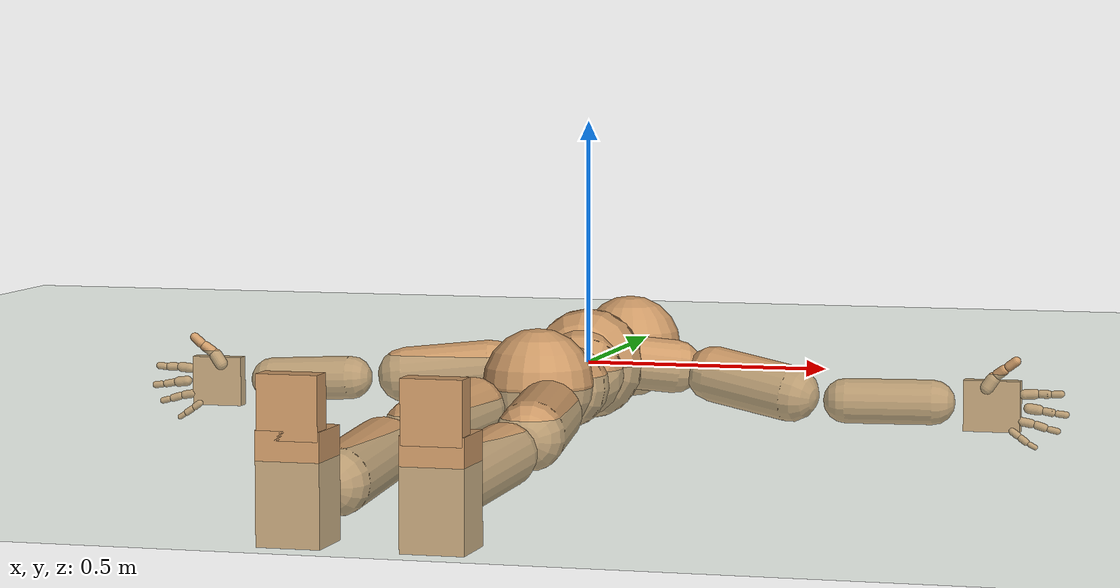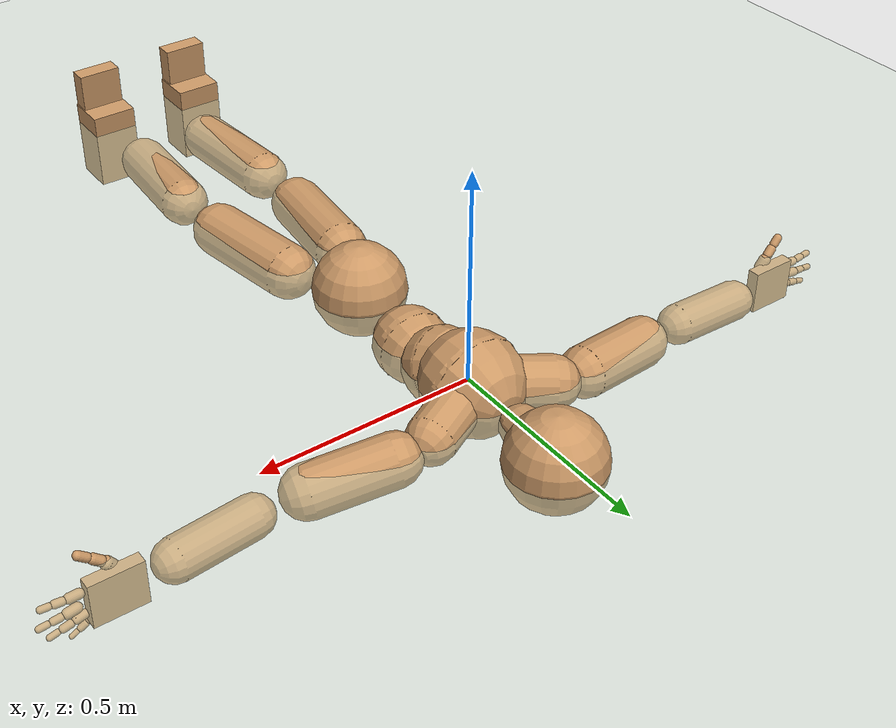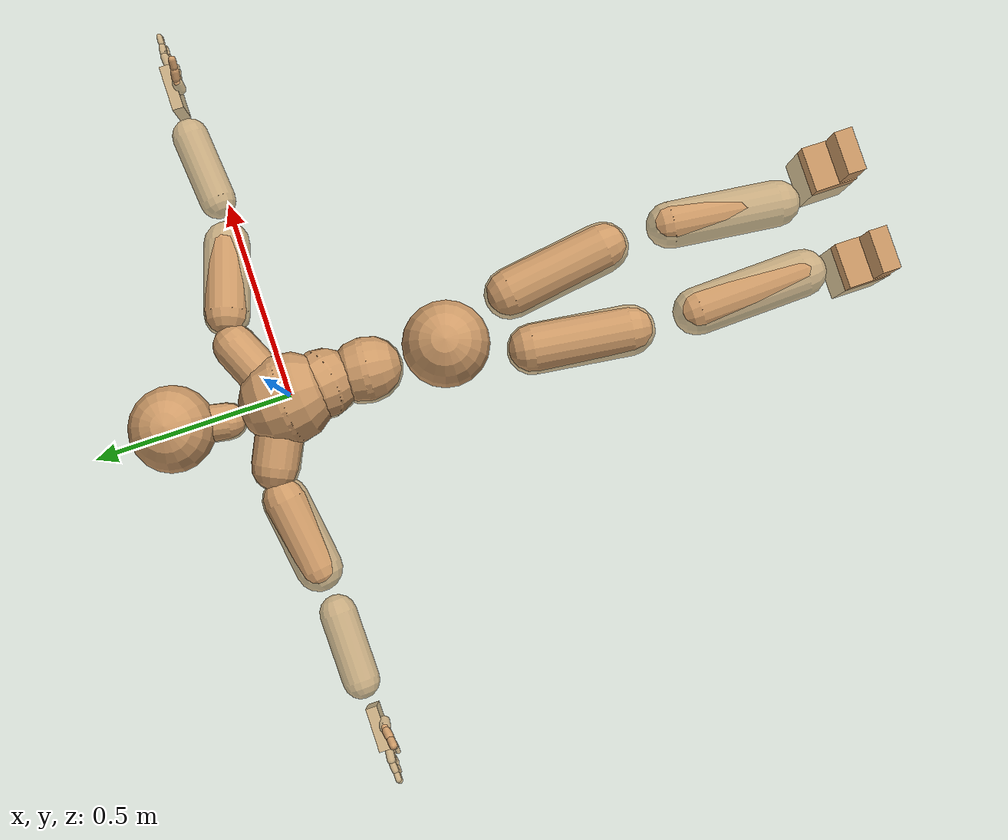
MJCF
<mujoco model="humanoid">
  <compiler coordinate="local"/>
  <default>
    <joint damping="0.0" armature="0.01" stiffness="0.0" limited="true"/>
    <geom conaffinity="1" condim="3" contype="7" margin="0.001" rgba="0.8 0.6 .4 1"/>
  </default>
  <asset>
    <texture type="skybox" builtin="gradient" rgb1=".4 .5 .6" rgb2="0 0 0" width="100" height="100"/>
    <texture builtin="flat" height="1278" mark="cross" markrgb="1 1 1" name="texgeom" random="0.01" rgb1="0.8 0.6 0.4" rgb2="0.8 0.6 0.4" type="cube" width="127"/>
    <texture builtin="checker" height="100" name="texplane" rgb1="0 0 0" rgb2="0.8 0.8 0.8" type="2d" width="100"/>
    <material name="MatPlane" reflectance="0.5" shininess="1" specular="1" texrepeat="60 60" texture="texplane"/>
    <material name="geom" texture="texgeom" texuniform="true"/>
  </asset>
  <worldbody>
    <light cutoff="100" diffuse="1 1 1" dir="-0 0 -1.3" directional="true" exponent="1" pos="0 0 1.3" specular=".1 .1 .1"/>
    <geom conaffinity="1" condim="3" name="floor" pos="0 0 0" rgba="0.8 0.9 0.8 1" size="100 100 .2" type="plane" material="MatPlane"/>
    <body name="Pelvis" pos="0.0029 -0.4027 0.0025">
      <freejoint name="Pelvis"/>
      <geom type="sphere" contype="1" conaffinity="1" density="4629.6296296296305" size="0.1094" pos="0.0000 0.0000 0.0000" name="Pelvis"/>
      <body name="L_Hip" pos="0.0609 -0.105 -0.0309">
        <joint name="L_Hip_x" type="hinge" pos="0 0 0" axis="1 0 0" user="250 2.5 1 500 10 2" armature="0.01" range="-90.0000 90.0000" damping="0" stiffness="0"/>
        <joint name="L_Hip_y" type="hinge" pos="0 0 0" axis="0 1 0" user="250 2.5 1 500 10 2" armature="0.01" range="-90.0000 90.0000" damping="0" stiffness="0"/>
        <joint name="L_Hip_z" type="hinge" pos="0 0 0" axis="0 0 1" user="250 2.5 1 500 10 2" armature="0.01" range="-90.0000 90.0000" damping="0" stiffness="0"/>
        <geom type="capsule" contype="1" conaffinity="1" density="2040.816327" fromto="0.0125 -0.0859 -0.0020 0.0499 -0.3435 -0.0080" size="0.065" name="L_Hip"/>
        <body name="L_Knee" pos="0.0624 -0.4294 -0.01">
          <joint name="L_Knee_x" type="hinge" pos="0 0 0" axis="1 0 0" user="250 2.5 1 500 10 2" armature="0.01" range="-180.0000 180.0000" damping="0" stiffness="0"/>
          <joint name="L_Knee_y" type="hinge" pos="0 0 0" axis="0 1 0" user="250 2.5 1 500 10 2" armature="0.01" range="-5.6250 5.6250" damping="0" stiffness="0"/>
          <joint name="L_Knee_z" type="hinge" pos="0 0 0" axis="0 0 1" user="250 2.5 1 500 10 2" armature="0.01" range="-5.6250 5.6250" damping="0" stiffness="0"/>
          <geom type="capsule" contype="1" conaffinity="1" density="1234.567901" fromto="-0.0096 -0.0926 -0.0076 -0.0383 -0.3705 -0.0304" size="0.0591" name="L_Knee"/>
          <body name="L_Ankle" pos="-0.0479 -0.4631 -0.038">
            <joint name="L_Ankle_x" type="hinge" pos="0 0 0" axis="1 0 0" user="150 2.5 1 500 10 2" armature="0.01" range="-90.0000 90.0000" damping="0" stiffness="0"/>
            <joint name="L_Ankle_y" type="hinge" pos="0 0 0" axis="0 1 0" user="150 2.5 1 500 10 2" armature="0.01" range="-90.0000 90.0000" damping="0" stiffness="0"/>
            <joint name="L_Ankle_z" type="hinge" pos="0 0 0" axis="0 0 1" user="150 2.5 1 500 10 2" armature="0.01" range="-90.0000 90.0000" damping="0" stiffness="0"/>
            <geom type="box" density="459.863562" pos="0.0471 -0.0349 0.0267" size="0.0563 0.0529 0.0984" quat="1.0000 0.0000 0.0000 0.0000" name="L_Ankle"/>
            <body name="L_Toe" pos="0.0544 -0.0688 0.1352">
              <joint name="L_Toe_x" type="hinge" pos="0 0 0" axis="1 0 0" user="150 1 1 500 1 1" armature="0.01" range="-90.0000 90.0000" damping="0" stiffness="0"/>
              <joint name="L_Toe_y" type="hinge" pos="0 0 0" axis="0 1 0" user="150 1 1 500 1 1" armature="0.01" range="-45.0000 45.0000" damping="0" stiffness="0"/>
              <joint name="L_Toe_z" type="hinge" pos="0 0 0" axis="0 0 1" user="150 1 1 500 1 1" armature="0.01" range="-45.0000 45.0000" damping="0" stiffness="0"/>
              <geom type="box" density="424.175928" pos="-0.0073 0.0035 0.0290" size="0.0537 0.0226 0.0557" quat="1.0000 0.0000 0.0000 0.0000" name="L_Toe"/>
            </body>
          </body>
        </body>
      </body>
      <body name="R_Hip" pos="-0.0661 -0.1182 -0.0245">
        <joint name="R_Hip_x" type="hinge" pos="0 0 0" axis="1 0 0" user="250 2.5 1 500 10 2" armature="0.01" range="-90.0000 90.0000" damping="0" stiffness="0"/>
        <joint name="R_Hip_y" type="hinge" pos="0 0 0" axis="0 1 0" user="250 2.5 1 500 10 2" armature="0.01" range="-90.0000 90.0000" damping="0" stiffness="0"/>
        <joint name="R_Hip_z" type="hinge" pos="0 0 0" axis="0 0 1" user="250 2.5 1 500 10 2" armature="0.01" range="-90.0000 90.0000" damping="0" stiffness="0"/>
        <geom type="capsule" contype="1" conaffinity="1" density="2040.816327" fromto="-0.0102 -0.0820 -0.0038 -0.0406 -0.3279 -0.0153" size="0.0642" name="R_Hip"/>
        <body name="R_Knee" pos="-0.0508 -0.4098 -0.0191">
          <joint name="R_Knee_x" type="hinge" pos="0 0 0" axis="1 0 0" user="250 2.5 1 500 10 2" armature="0.01" range="-180.0000 180.0000" damping="0" stiffness="0"/>
          <joint name="R_Knee_y" type="hinge" pos="0 0 0" axis="0 1 0" user="250 2.5 1 500 10 2" armature="0.01" range="-5.6250 5.6250" damping="0" stiffness="0"/>
          <joint name="R_Knee_z" type="hinge" pos="0 0 0" axis="0 0 1" user="250 2.5 1 500 10 2" armature="0.01" range="-5.6250 5.6250" damping="0" stiffness="0"/>
          <geom type="capsule" contype="1" conaffinity="1" density="1234.567901" fromto="0.0033 -0.0946 -0.0049 0.0131 -0.3782 -0.0197" size="0.0608" name="R_Knee"/>
          <body name="R_Ankle" pos="0.0164 -0.4728 -0.0247">
            <joint name="R_Ankle_x" type="hinge" pos="0 0 0" axis="1 0 0" user="150 1 1 500 10 2" armature="0.01" range="-90.0000 90.0000" damping="0" stiffness="0"/>
            <joint name="R_Ankle_y" type="hinge" pos="0 0 0" axis="0 1 0" user="150 1 1 500 10 2" armature="0.01" range="-90.0000 90.0000" damping="0" stiffness="0"/>
            <joint name="R_Ankle_z" type="hinge" pos="0 0 0" axis="0 0 1" user="150 1 1 500 10 2" armature="0.01" range="-90.0000 90.0000" damping="0" stiffness="0"/>
            <geom type="box" density="459.842336" pos="-0.0277 -0.0316 0.0161" size="0.0563 0.0529 0.0984" quat="1.0000 0.0000 0.0000 0.0000" name="R_Ankle"/>
            <body name="R_Toe" pos="-0.0438 -0.0681 0.1357">
              <joint name="R_Toe_x" type="hinge" pos="0 0 0" axis="1 0 0" user="150 1 1 500 1 1" armature="0.01" range="-90.0000 90.0000" damping="0" stiffness="0"/>
              <joint name="R_Toe_y" type="hinge" pos="0 0 0" axis="0 1 0" user="150 1 1 500 1 1" armature="0.01" range="-45.0000 45.0000" damping="0" stiffness="0"/>
              <joint name="R_Toe_z" type="hinge" pos="0 0 0" axis="0 0 1" user="150 1 1 500 1 1" armature="0.01" range="-45.0000 45.0000" damping="0" stiffness="0"/>
              <geom type="box" density="424.18878" pos="0.0160 0.0062 0.0179" size="0.0537 0.0226 0.0557" quat="1.0000 0.0000 0.0000 0.0000" name="R_Toe"/>
            </body>
          </body>
        </body>
      </body>
      <body name="Torso" pos="-0.0029 0.126 -0.0282">
        <joint name="Torso_x" type="hinge" pos="0 0 0" axis="1 0 0" user="500 5 1 500 10 2" armature="0.01" range="-60.0000 60.0000" damping="0" stiffness="0"/>
        <joint name="Torso_y" type="hinge" pos="0 0 0" axis="0 1 0" user="500 5 1 500 10 2" armature="0.01" range="-60.0000 60.0000" damping="0" stiffness="0"/>
        <joint name="Torso_z" type="hinge" pos="0 0 0" axis="0 0 1" user="500 5 1 500 10 2" armature="0.01" range="-60.0000 60.0000" damping="0" stiffness="0"/>
        <geom type="capsule" contype="1" conaffinity="1" density="2040.816327" fromto="0.0052 0.0725 -0.0015 0.0063 0.0886 -0.0018" size="0.0836" name="Torso"/>
        <body name="Spine" pos="0.0115 0.1612 -0.0033">
          <joint name="Spine_x" type="hinge" pos="0 0 0" axis="1 0 0" user="500 5 1 500 10 2" armature="0.01" range="-60.0000 60.0000" damping="0" stiffness="0"/>
          <joint name="Spine_y" type="hinge" pos="0 0 0" axis="0 1 0" user="500 5 1 500 10 2" armature="0.01" range="-60.0000 60.0000" damping="0" stiffness="0"/>
          <joint name="Spine_z" type="hinge" pos="0 0 0" axis="0 0 1" user="500 5 1 500 10 2" armature="0.01" range="-60.0000 60.0000" damping="0" stiffness="0"/>
          <geom type="capsule" contype="1" conaffinity="1" density="2040.816327" fromto="-0.0057 0.0290 0.0137 -0.0070 0.0355 0.0167" size="0.0881" name="Spine"/>
          <body name="Chest" pos="-0.0127 0.0645 0.0304">
            <joint name="Chest_x" type="hinge" pos="0 0 0" axis="1 0 0" user="500 5 1 500 10 2" armature="0.01" range="-60.0000 60.0000" damping="0" stiffness="0"/>
            <joint name="Chest_y" type="hinge" pos="0 0 0" axis="0 1 0" user="500 5 1 500 10 2" armature="0.01" range="-60.0000 60.0000" damping="0" stiffness="0"/>
            <joint name="Chest_z" type="hinge" pos="0 0 0" axis="0 0 1" user="500 5 1 500 10 2" armature="0.01" range="-60.0000 60.0000" damping="0" stiffness="0"/>
            <geom type="capsule" contype="1" conaffinity="1" density="2040.816327" fromto="-0.0024 0.0557 -0.0051 -0.0029 0.0680 -0.0063" size="0.1144" name="Chest"/>
            <body name="Neck" pos="-0.0139 0.1827 -0.0242">
              <joint name="Neck_x" type="hinge" pos="0 0 0" axis="1 0 0" user="150 1 1 250 50 4" armature="0.01" range="-180.0000 180.0000" damping="0" stiffness="0"/>
              <joint name="Neck_y" type="hinge" pos="0 0 0" axis="0 1 0" user="150 1 1 250 50 4" armature="0.01" range="-180.0000 180.0000" damping="0" stiffness="0"/>
              <joint name="Neck_z" type="hinge" pos="0 0 0" axis="0 0 1" user="150 1 1 250 50 4" armature="0.01" range="-180.0000 180.0000" damping="0" stiffness="0"/>
              <geom type="capsule" contype="1" conaffinity="1" density="1000" fromto="0.0057 0.0338 0.0049 0.0228 0.1353 0.0197" size="0.047" name="Neck"/>
              <body name="Head" pos="0.0285 0.1691 0.0246">
                <joint name="Head_x" type="hinge" pos="0 0 0" axis="1 0 0" user="150 1 1 250 50 4" armature="0.01" range="-90.0000 90.0000" damping="0" stiffness="0"/>
                <joint name="Head_y" type="hinge" pos="0 0 0" axis="0 1 0" user="150 1 1 250 50 4" armature="0.01" range="-90.0000 90.0000" damping="0" stiffness="0"/>
                <joint name="Head_z" type="hinge" pos="0 0 0" axis="0 0 1" user="150 1 1 250 50 4" armature="0.01" range="-90.0000 90.0000" damping="0" stiffness="0"/>
                <geom type="sphere" contype="1" conaffinity="1" density="1000" size="0.1089" pos="0.0000 0.0000 0.0000" name="Head"/>
              </body>
            </body>
            <body name="L_Thorax" pos="0.0514 0.0947 -0.0016">
              <joint name="L_Thorax_x" type="hinge" pos="0 0 0" axis="1 0 0" user="200 2 1 500 50 4" armature="0.01" range="-180.0000 180.0000" damping="0" stiffness="0"/>
              <joint name="L_Thorax_y" type="hinge" pos="0 0 0" axis="0 1 0" user="200 2 1 500 50 4" armature="0.01" range="-180.0000 180.0000" damping="0" stiffness="0"/>
              <joint name="L_Thorax_z" type="hinge" pos="0 0 0" axis="0 0 1" user="200 2 1 500 50 4" armature="0.01" range="-180.0000 180.0000" damping="0" stiffness="0"/>
              <geom type="capsule" contype="1" conaffinity="1" density="1000" fromto="0.0280 0.0127 -0.0037 0.1120 0.0508 -0.0147" size="0.0557" name="L_Thorax"/>
              <body name="L_Shoulder" pos="0.14 0.0635 -0.0183">
                <joint name="L_Shoulder_x" type="hinge" pos="0 0 0" axis="1 0 0" user="200 2 1 500 50 4" armature="0.01" range="-180.0000 180.0000" damping="0" stiffness="0"/>
                <joint name="L_Shoulder_y" type="hinge" pos="0 0 0" axis="0 1 0" user="200 2 1 500 50 4" armature="0.01" range="-180.0000 180.0000" damping="0" stiffness="0"/>
                <joint name="L_Shoulder_z" type="hinge" pos="0 0 0" axis="0 0 1" user="200 2 1 500 50 4" armature="0.01" range="-180.0000 180.0000" damping="0" stiffness="0"/>
                <geom type="capsule" contype="1" conaffinity="1" density="1000" fromto="0.0575 -0.0166 -0.0097 0.2302 -0.0664 -0.0389" size="0.0586" name="L_Shoulder"/>
                <body name="L_Elbow" pos="0.2877 -0.083 -0.0486">
                  <joint name="L_Elbow_x" type="hinge" pos="0 0 0" axis="1 0 0" user="150 1 1 150 10 2" armature="0.01" range="-720.0000 720.0000" damping="0" stiffness="0"/>
                  <joint name="L_Elbow_y" type="hinge" pos="0 0 0" axis="0 1 0" user="150 1 1 150 10 2" armature="0.01" range="-720.0000 720.0000" damping="0" stiffness="0"/>
                  <joint name="L_Elbow_z" type="hinge" pos="0 0 0" axis="0 0 1" user="150 1 1 150 10 2" armature="0.01" range="-720.0000 720.0000" damping="0" stiffness="0"/>
                  <geom type="capsule" contype="1" conaffinity="1" density="1000" fromto="0.0590 0.0054 0.0000 0.2362 0.0217 0.0001" size="0.0461" name="L_Elbow"/>
                  <body name="L_Wrist" pos="0.2952 0.0272 0.0001">
                    <joint name="L_Wrist_x" type="hinge" pos="0 0 0" axis="1 0 0" user="100 1 1 150 1 1" armature="0.01" range="-180.0000 180.0000" damping="0" stiffness="0"/>
                    <joint name="L_Wrist_y" type="hinge" pos="0 0 0" axis="0 1 0" user="100 1 1 150 1 1" armature="0.01" range="-180.0000 180.0000" damping="0" stiffness="0"/>
                    <joint name="L_Wrist_z" type="hinge" pos="0 0 0" axis="0 0 1" user="100 1 1 150 1 1" armature="0.01" range="-180.0000 180.0000" damping="0" stiffness="0"/>
                    <geom type="box" density="1209.075488" pos="0.0628 -0.0021 -0.0034" size="0.0578 0.0142 0.0523" quat="1.0000 0.0000 0.0000 0.0000" name="L_Wrist"/>
                    <body name="L_Index1" pos="0.1218 -0.0099 0.0217">
                      <joint name="L_Index1_x" type="hinge" pos="0 0 0" axis="1 0 0" user="100 10 1 150" armature="0.01" range="-180.0000 180.0000" damping="0" stiffness="0"/>
                      <joint name="L_Index1_y" type="hinge" pos="0 0 0" axis="0 1 0" user="100 10 1 150" armature="0.01" range="-180.0000 180.0000" damping="0" stiffness="0"/>
                      <joint name="L_Index1_z" type="hinge" pos="0 0 0" axis="0 0 1" user="100 10 1 150" armature="0.01" range="-180.0000 180.0000" damping="0" stiffness="0"/>
                      <geom type="capsule" contype="1" conaffinity="1" density="1000" fromto="0.0071 0.0006 0.0006 0.0283 0.0023 0.0023" size="0.0103" name="L_Index1"/>
                      <body name="L_Index2" pos="0.0353 0.0028 0.0029">
                        <joint name="L_Index2_x" type="hinge" pos="0 0 0" axis="1 0 0" user="100 10 1 150" armature="0.01" range="-180.0000 180.0000" damping="0" stiffness="0"/>
                        <joint name="L_Index2_y" type="hinge" pos="0 0 0" axis="0 1 0" user="100 10 1 150" armature="0.01" range="-180.0000 180.0000" damping="0" stiffness="0"/>
                        <joint name="L_Index2_z" type="hinge" pos="0 0 0" axis="0 0 1" user="100 10 1 150" armature="0.01" range="-180.0000 180.0000" damping="0" stiffness="0"/>
                        <geom type="capsule" contype="1" conaffinity="1" density="1000" fromto="0.0050 -0.0005 -0.0001 0.0198 -0.0021 -0.0003" size="0.0085" name="L_Index2"/>
                        <body name="L_Index3" pos="0.0248 -0.0026 -0.0003">
                          <joint name="L_Index3_x" type="hinge" pos="0 0 0" axis="1 0 0" user="100 10 1 150" armature="0.01" range="-180.0000 180.0000" damping="0" stiffness="0"/>
                          <joint name="L_Index3_y" type="hinge" pos="0 0 0" axis="0 1 0" user="100 10 1 150" armature="0.01" range="-180.0000 180.0000" damping="0" stiffness="0"/>
                          <joint name="L_Index3_z" type="hinge" pos="0 0 0" axis="0 0 1" user="100 10 1 150" armature="0.01" range="-180.0000 180.0000" damping="0" stiffness="0"/>
                          <geom type="capsule" contype="1" conaffinity="1" density="1000" fromto="0.0054 -0.0001 0.0003 0.0214 -0.0005 0.0013" size="0.0072" name="L_Index3"/>
                        </body>
                      </body>
                    </body>
                    <body name="L_Middle1" pos="0.1308 -0.0071 -0.005">
                      <joint name="L_Middle1_x" type="hinge" pos="0 0 0" axis="1 0 0" user="100 10 1 150" armature="0.01" range="-180.0000 180.0000" damping="0" stiffness="0"/>
                      <joint name="L_Middle1_y" type="hinge" pos="0 0 0" axis="0 1 0" user="100 10 1 150" armature="0.01" range="-180.0000 180.0000" damping="0" stiffness="0"/>
                      <joint name="L_Middle1_z" type="hinge" pos="0 0 0" axis="0 0 1" user="100 10 1 150" armature="0.01" range="-180.0000 180.0000" damping="0" stiffness="0"/>
                      <geom type="capsule" contype="1" conaffinity="1" density="1000" fromto="0.0068 0.0002 -0.0009 0.0271 0.0008 -0.0036" size="0.0106" name="L_Middle1"/>
                      <body name="L_Middle2" pos="0.0339 0.001 -0.0045">
                        <joint name="L_Middle2_x" type="hinge" pos="0 0 0" axis="1 0 0" user="100 10 1 150" armature="0.01" range="-180.0000 180.0000" damping="0" stiffness="0"/>
                        <joint name="L_Middle2_y" type="hinge" pos="0 0 0" axis="0 1 0" user="100 10 1 150" armature="0.01" range="-180.0000 180.0000" damping="0" stiffness="0"/>
                        <joint name="L_Middle2_z" type="hinge" pos="0 0 0" axis="0 0 1" user="100 10 1 150" armature="0.01" range="-180.0000 180.0000" damping="0" stiffness="0"/>
                        <geom type="capsule" contype="1" conaffinity="1" density="1000" fromto="0.0052 -0.0005 -0.0009 0.0208 -0.0019 -0.0037" size="0.0079" name="L_Middle2"/>
                        <body name="L_Middle3" pos="0.026 -0.0024 -0.0047">
                          <joint name="L_Middle3_x" type="hinge" pos="0 0 0" axis="1 0 0" user="100 10 1 150" armature="0.01" range="-180.0000 180.0000" damping="0" stiffness="0"/>
                          <joint name="L_Middle3_y" type="hinge" pos="0 0 0" axis="0 1 0" user="100 10 1 150" armature="0.01" range="-180.0000 180.0000" damping="0" stiffness="0"/>
                          <joint name="L_Middle3_z" type="hinge" pos="0 0 0" axis="0 0 1" user="100 10 1 150" armature="0.01" range="-180.0000 180.0000" damping="0" stiffness="0"/>
                          <geom type="capsule" contype="1" conaffinity="1" density="1000" fromto="0.0056 -0.0001 -0.0005 0.0224 -0.0003 -0.0021" size="0.0069" name="L_Middle3"/>
                        </body>
                      </body>
                    </body>
                    <body name="L_Pinky1" pos="0.1021 -0.0167 -0.05">
                      <joint name="L_Pinky1_x" type="hinge" pos="0 0 0" axis="1 0 0" user="100 10 1 150" armature="0.01" range="-180.0000 180.0000" damping="0" stiffness="0"/>
                      <joint name="L_Pinky1_y" type="hinge" pos="0 0 0" axis="0 1 0" user="100 10 1 150" armature="0.01" range="-180.0000 180.0000" damping="0" stiffness="0"/>
                      <joint name="L_Pinky1_z" type="hinge" pos="0 0 0" axis="0 0 1" user="100 10 1 150" armature="0.01" range="-180.0000 180.0000" damping="0" stiffness="0"/>
                      <geom type="capsule" contype="1" conaffinity="1" density="1000" fromto="0.0036 -0.0003 -0.0026 0.0143 -0.0011 -0.0104" size="0.0074" name="L_Pinky1"/>
                      <body name="L_Pinky2" pos="0.0179 -0.0014 -0.0131">
                        <joint name="L_Pinky2_x" type="hinge" pos="0 0 0" axis="1 0 0" user="100 10 1 150" armature="0.01" range="-180.0000 180.0000" damping="0" stiffness="0"/>
                        <joint name="L_Pinky2_y" type="hinge" pos="0 0 0" axis="0 1 0" user="100 10 1 150" armature="0.01" range="-180.0000 180.0000" damping="0" stiffness="0"/>
                        <joint name="L_Pinky2_z" type="hinge" pos="0 0 0" axis="0 0 1" user="100 10 1 150" armature="0.01" range="-180.0000 180.0000" damping="0" stiffness="0"/>
                        <geom type="capsule" contype="1" conaffinity="1" density="1000" fromto="0.0035 -0.0004 -0.0024 0.0140 -0.0017 -0.0097" size="0.0071" name="L_Pinky2"/>
                        <body name="L_Pinky3" pos="0.0174 -0.0021 -0.0121">
                          <joint name="L_Pinky3_x" type="hinge" pos="0 0 0" axis="1 0 0" user="100 10 1 150" armature="0.01" range="-180.0000 180.0000" damping="0" stiffness="0"/>
                          <joint name="L_Pinky3_y" type="hinge" pos="0 0 0" axis="0 1 0" user="100 10 1 150" armature="0.01" range="-180.0000 180.0000" damping="0" stiffness="0"/>
                          <joint name="L_Pinky3_z" type="hinge" pos="0 0 0" axis="0 0 1" user="100 10 1 150" armature="0.01" range="-180.0000 180.0000" damping="0" stiffness="0"/>
                          <geom type="capsule" contype="1" conaffinity="1" density="1000" fromto="0.0039 -0.0000 -0.0020 0.0156 -0.0001 -0.0081" size="0.0054" name="L_Pinky3"/>
                        </body>
                      </body>
                    </body>
                    <body name="L_Ring1" pos="0.1176 -0.0105 -0.0316">
                      <joint name="L_Ring1_x" type="hinge" pos="0 0 0" axis="1 0 0" user="100 10 1 150" armature="0.01" range="-180.0000 180.0000" damping="0" stiffness="0"/>
                      <joint name="L_Ring1_y" type="hinge" pos="0 0 0" axis="0 1 0" user="100 10 1 150" armature="0.01" range="-180.0000 180.0000" damping="0" stiffness="0"/>
                      <joint name="L_Ring1_z" type="hinge" pos="0 0 0" axis="0 0 1" user="100 10 1 150" armature="0.01" range="-180.0000 180.0000" damping="0" stiffness="0"/>
                      <geom type="capsule" contype="1" conaffinity="1" density="1000" fromto="0.0063 0.0004 -0.0012 0.0253 0.0015 -0.0047" size="0.0089" name="L_Ring1"/>
                      <body name="L_Ring2" pos="0.0317 0.0019 -0.0059">
                        <joint name="L_Ring2_x" type="hinge" pos="0 0 0" axis="1 0 0" user="100 10 1 150" armature="0.01" range="-180.0000 180.0000" damping="0" stiffness="0"/>
                        <joint name="L_Ring2_y" type="hinge" pos="0 0 0" axis="0 1 0" user="100 10 1 150" armature="0.01" range="-180.0000 180.0000" damping="0" stiffness="0"/>
                        <joint name="L_Ring2_z" type="hinge" pos="0 0 0" axis="0 0 1" user="100 10 1 150" armature="0.01" range="-180.0000 180.0000" damping="0" stiffness="0"/>
                        <geom type="capsule" contype="1" conaffinity="1" density="1000" fromto="0.0051 -0.0003 -0.0016 0.0203 -0.0013 -0.0063" size="0.0083" name="L_Ring2"/>
                        <body name="L_Ring3" pos="0.0253 -0.0017 -0.0079">
                          <joint name="L_Ring3_x" type="hinge" pos="0 0 0" axis="1 0 0" user="100 10 1 150" armature="0.01" range="-180.0000 180.0000" damping="0" stiffness="0"/>
                          <joint name="L_Ring3_y" type="hinge" pos="0 0 0" axis="0 1 0" user="100 10 1 150" armature="0.01" range="-180.0000 180.0000" damping="0" stiffness="0"/>
                          <joint name="L_Ring3_z" type="hinge" pos="0 0 0" axis="0 0 1" user="100 10 1 150" armature="0.01" range="-180.0000 180.0000" damping="0" stiffness="0"/>
                          <geom type="capsule" contype="1" conaffinity="1" density="1000" fromto="0.0055 0.0001 -0.0012 0.0219 0.0003 -0.0047" size="0.0065" name="L_Ring3"/>
                        </body>
                      </body>
                    </body>
                    <body name="L_Thumb1" pos="0.0503 -0.0216 0.0302">
                      <joint name="L_Thumb1_x" type="hinge" pos="0 0 0" axis="1 0 0" user="100 10 1 150" armature="0.01" range="-180.0000 180.0000" damping="0" stiffness="0"/>
                      <joint name="L_Thumb1_y" type="hinge" pos="0 0 0" axis="0 1 0" user="100 10 1 150" armature="0.01" range="-180.0000 180.0000" damping="0" stiffness="0"/>
                      <joint name="L_Thumb1_z" type="hinge" pos="0 0 0" axis="0 0 1" user="100 10 1 150" armature="0.01" range="-180.0000 180.0000" damping="0" stiffness="0"/>
                      <geom type="capsule" contype="1" conaffinity="1" density="1000" fromto="0.0039 0.0002 0.0057 0.0157 0.0009 0.0229" size="0.014" name="L_Thumb1"/>
                      <body name="L_Thumb2" pos="0.0197 0.0011 0.0286">
                        <joint name="L_Thumb2_x" type="hinge" pos="0 0 0" axis="1 0 0" user="100 10 1 150" armature="0.01" range="-180.0000 180.0000" damping="0" stiffness="0"/>
                        <joint name="L_Thumb2_y" type="hinge" pos="0 0 0" axis="0 1 0" user="100 10 1 150" armature="0.01" range="-180.0000 180.0000" damping="0" stiffness="0"/>
                        <joint name="L_Thumb2_z" type="hinge" pos="0 0 0" axis="0 0 1" user="100 10 1 150" armature="0.01" range="-180.0000 180.0000" damping="0" stiffness="0"/>
                        <geom type="capsule" contype="1" conaffinity="1" density="1000" fromto="0.0047 -0.0012 0.0035 0.0187 -0.0046 0.0139" size="0.011" name="L_Thumb2"/>
                        <body name="L_Thumb3" pos="0.0234 -0.0058 0.0174">
                          <joint name="L_Thumb3_x" type="hinge" pos="0 0 0" axis="1 0 0" user="100 10 1 150" armature="0.01" range="-180.0000 180.0000" damping="0" stiffness="0"/>
                          <joint name="L_Thumb3_y" type="hinge" pos="0 0 0" axis="0 1 0" user="100 10 1 150" armature="0.01" range="-180.0000 180.0000" damping="0" stiffness="0"/>
                          <joint name="L_Thumb3_z" type="hinge" pos="0 0 0" axis="0 0 1" user="100 10 1 150" armature="0.01" range="-180.0000 180.0000" damping="0" stiffness="0"/>
                          <geom type="capsule" contype="1" conaffinity="1" density="1000" fromto="0.0051 -0.0008 0.0039 0.0203 -0.0030 0.0155" size="0.0098" name="L_Thumb3"/>
                        </body>
                      </body>
                    </body>
                  </body>
                </body>
              </body>
            </body>
            <body name="R_Thorax" pos="-0.0536 0.0937 -0.0085">
              <joint name="R_Thorax_x" type="hinge" pos="0 0 0" axis="1 0 0" user="200 2 1 150 10 2" armature="0.01" range="-180.0000 180.0000" damping="0" stiffness="0"/>
              <joint name="R_Thorax_y" type="hinge" pos="0 0 0" axis="0 1 0" user="200 2 1 150 10 2" armature="0.01" range="-180.0000 180.0000" damping="0" stiffness="0"/>
              <joint name="R_Thorax_z" type="hinge" pos="0 0 0" axis="0 0 1" user="200 2 1 150 10 2" armature="0.01" range="-180.0000 180.0000" damping="0" stiffness="0"/>
              <geom type="capsule" contype="1" conaffinity="1" density="1000" fromto="-0.0243 0.0118 -0.0031 -0.0973 0.0473 -0.0123" size="0.061" name="R_Thorax"/>
              <body name="R_Shoulder" pos="-0.1216 0.0591 -0.0154">
                <joint name="R_Shoulder_x" type="hinge" pos="0 0 0" axis="1 0 0" user="200 2 1 250 10 2" armature="0.01" range="-180.0000 180.0000" damping="0" stiffness="0"/>
                <joint name="R_Shoulder_y" type="hinge" pos="0 0 0" axis="0 1 0" user="200 2 1 250 10 2" armature="0.01" range="-180.0000 180.0000" damping="0" stiffness="0"/>
                <joint name="R_Shoulder_z" type="hinge" pos="0 0 0" axis="0 0 1" user="200 2 1 250 10 2" armature="0.01" range="-180.0000 180.0000" damping="0" stiffness="0"/>
                <geom type="capsule" contype="1" conaffinity="1" density="1000" fromto="-0.0616 -0.0085 -0.0061 -0.2465 -0.0342 -0.0245" size="0.0585" name="R_Shoulder"/>
                <body name="R_Elbow" pos="-0.3082 -0.0427 -0.0306">
                  <joint name="R_Elbow_x" type="hinge" pos="0 0 0" axis="1 0 0" user="150 1 1 150 10 2" armature="0.01" range="-720.0000 720.0000" damping="0" stiffness="0"/>
                  <joint name="R_Elbow_y" type="hinge" pos="0 0 0" axis="0 1 0" user="150 1 1 150 10 2" armature="0.01" range="-720.0000 720.0000" damping="0" stiffness="0"/>
                  <joint name="R_Elbow_z" type="hinge" pos="0 0 0" axis="0 0 1" user="150 1 1 150 10 2" armature="0.01" range="-720.0000 720.0000" damping="0" stiffness="0"/>
                  <geom type="capsule" contype="1" conaffinity="1" density="1000" fromto="-0.0582 -0.0009 -0.0028 -0.2327 -0.0035 -0.0114" size="0.0465" name="R_Elbow"/>
                  <body name="R_Wrist" pos="-0.2909 -0.0044 -0.0142">
                    <joint name="R_Wrist_x" type="hinge" pos="0 0 0" axis="1 0 0" user="100 1 1 150 1 1" armature="0.01" range="-180.0000 180.0000" damping="0" stiffness="0"/>
                    <joint name="R_Wrist_y" type="hinge" pos="0 0 0" axis="0 1 0" user="100 1 1 150 1 1" armature="0.01" range="-180.0000 180.0000" damping="0" stiffness="0"/>
                    <joint name="R_Wrist_z" type="hinge" pos="0 0 0" axis="0 0 1" user="100 1 1 150 1 1" armature="0.01" range="-180.0000 180.0000" damping="0" stiffness="0"/>
                    <geom type="box" density="1231.359967" pos="-0.0641 -0.0056 -0.0030" size="0.0547 0.0142 0.0523" quat="1.0000 0.0000 0.0000 0.0000" name="R_Wrist"/>
                    <body name="R_Index1" pos="-0.1196 -0.0133 0.0222">
                      <joint name="R_Index1_x" type="hinge" pos="0 0 0" axis="1 0 0" user="100 10 1 150" armature="0.01" range="-180.0000 180.0000" damping="0" stiffness="0"/>
                      <joint name="R_Index1_y" type="hinge" pos="0 0 0" axis="0 1 0" user="100 10 1 150" armature="0.01" range="-180.0000 180.0000" damping="0" stiffness="0"/>
                      <joint name="R_Index1_z" type="hinge" pos="0 0 0" axis="0 0 1" user="100 10 1 150" armature="0.01" range="-180.0000 180.0000" damping="0" stiffness="0"/>
                      <geom type="capsule" contype="1" conaffinity="1" density="1000" fromto="-0.0071 0.0006 0.0006 -0.0283 0.0023 0.0023" size="0.0103" name="R_Index1"/>
                      <body name="R_Index2" pos="-0.0353 0.0028 0.0029">
                        <joint name="R_Index2_x" type="hinge" pos="0 0 0" axis="1 0 0" user="100 10 1 150" armature="0.01" range="-180.0000 180.0000" damping="0" stiffness="0"/>
                        <joint name="R_Index2_y" type="hinge" pos="0 0 0" axis="0 1 0" user="100 10 1 150" armature="0.01" range="-180.0000 180.0000" damping="0" stiffness="0"/>
                        <joint name="R_Index2_z" type="hinge" pos="0 0 0" axis="0 0 1" user="100 10 1 150" armature="0.01" range="-180.0000 180.0000" damping="0" stiffness="0"/>
                        <geom type="capsule" contype="1" conaffinity="1" density="1000" fromto="-0.0050 -0.0005 -0.0001 -0.0198 -0.0021 -0.0003" size="0.0085" name="R_Index2"/>
                        <body name="R_Index3" pos="-0.0248 -0.0026 -0.0003">
                          <joint name="R_Index3_x" type="hinge" pos="0 0 0" axis="1 0 0" user="100 10 1 150" armature="0.01" range="-180.0000 180.0000" damping="0" stiffness="0"/>
                          <joint name="R_Index3_y" type="hinge" pos="0 0 0" axis="0 1 0" user="100 10 1 150" armature="0.01" range="-180.0000 180.0000" damping="0" stiffness="0"/>
                          <joint name="R_Index3_z" type="hinge" pos="0 0 0" axis="0 0 1" user="100 10 1 150" armature="0.01" range="-180.0000 180.0000" damping="0" stiffness="0"/>
                          <geom type="capsule" contype="1" conaffinity="1" density="1000" fromto="-0.0046 -0.0001 0.0003 -0.0182 -0.0005 0.0013" size="0.0075" name="R_Index3"/>
                        </body>
                      </body>
                    </body>
                    <body name="R_Middle1" pos="-0.1286 -0.0106 -0.0046">
                      <joint name="R_Middle1_x" type="hinge" pos="0 0 0" axis="1 0 0" user="100 10 1 150" armature="0.01" range="-180.0000 180.0000" damping="0" stiffness="0"/>
                      <joint name="R_Middle1_y" type="hinge" pos="0 0 0" axis="0 1 0" user="100 10 1 150" armature="0.01" range="-180.0000 180.0000" damping="0" stiffness="0"/>
                      <joint name="R_Middle1_z" type="hinge" pos="0 0 0" axis="0 0 1" user="100 10 1 150" armature="0.01" range="-180.0000 180.0000" damping="0" stiffness="0"/>
                      <geom type="capsule" contype="1" conaffinity="1" density="1000" fromto="-0.0068 0.0002 -0.0009 -0.0271 0.0008 -0.0036" size="0.0106" name="R_Middle1"/>
                      <body name="R_Middle2" pos="-0.0339 0.001 -0.0045">
                        <joint name="R_Middle2_x" type="hinge" pos="0 0 0" axis="1 0 0" user="100 10 1 150" armature="0.01" range="-180.0000 180.0000" damping="0" stiffness="0"/>
                        <joint name="R_Middle2_y" type="hinge" pos="0 0 0" axis="0 1 0" user="100 10 1 150" armature="0.01" range="-180.0000 180.0000" damping="0" stiffness="0"/>
                        <joint name="R_Middle2_z" type="hinge" pos="0 0 0" axis="0 0 1" user="100 10 1 150" armature="0.01" range="-180.0000 180.0000" damping="0" stiffness="0"/>
                        <geom type="capsule" contype="1" conaffinity="1" density="1000" fromto="-0.0052 -0.0005 -0.0009 -0.0208 -0.0019 -0.0037" size="0.0079" name="R_Middle2"/>
                        <body name="R_Middle3" pos="-0.026 -0.0024 -0.0047">
                          <joint name="R_Middle3_x" type="hinge" pos="0 0 0" axis="1 0 0" user="100 10 1 150" armature="0.01" range="-180.0000 180.0000" damping="0" stiffness="0"/>
                          <joint name="R_Middle3_y" type="hinge" pos="0 0 0" axis="0 1 0" user="100 10 1 150" armature="0.01" range="-180.0000 180.0000" damping="0" stiffness="0"/>
                          <joint name="R_Middle3_z" type="hinge" pos="0 0 0" axis="0 0 1" user="100 10 1 150" armature="0.01" range="-180.0000 180.0000" damping="0" stiffness="0"/>
                          <geom type="capsule" contype="1" conaffinity="1" density="1000" fromto="-0.0048 -0.0001 -0.0005 -0.0192 -0.0003 -0.0021" size="0.0072" name="R_Middle3"/>
                        </body>
                      </body>
                    </body>
                    <body name="R_Pinky1" pos="-0.0998 -0.0201 -0.0496">
                      <joint name="R_Pinky1_x" type="hinge" pos="0 0 0" axis="1 0 0" user="100 10 1 150" armature="0.01" range="-180.0000 180.0000" damping="0" stiffness="0"/>
                      <joint name="R_Pinky1_y" type="hinge" pos="0 0 0" axis="0 1 0" user="100 10 1 150" armature="0.01" range="-180.0000 180.0000" damping="0" stiffness="0"/>
                      <joint name="R_Pinky1_z" type="hinge" pos="0 0 0" axis="0 0 1" user="100 10 1 150" armature="0.01" range="-180.0000 180.0000" damping="0" stiffness="0"/>
                      <geom type="capsule" contype="1" conaffinity="1" density="1000" fromto="-0.0036 -0.0003 -0.0026 -0.0143 -0.0011 -0.0104" size="0.0074" name="R_Pinky1"/>
                      <body name="R_Pinky2" pos="-0.0179 -0.0014 -0.0131">
                        <joint name="R_Pinky2_x" type="hinge" pos="0 0 0" axis="1 0 0" user="100 10 1 150" armature="0.01" range="-180.0000 180.0000" damping="0" stiffness="0"/>
                        <joint name="R_Pinky2_y" type="hinge" pos="0 0 0" axis="0 1 0" user="100 10 1 150" armature="0.01" range="-180.0000 180.0000" damping="0" stiffness="0"/>
                        <joint name="R_Pinky2_z" type="hinge" pos="0 0 0" axis="0 0 1" user="100 10 1 150" armature="0.01" range="-180.0000 180.0000" damping="0" stiffness="0"/>
                        <geom type="capsule" contype="1" conaffinity="1" density="1000" fromto="-0.0035 -0.0004 -0.0024 -0.0140 -0.0017 -0.0097" size="0.0071" name="R_Pinky2"/>
                        <body name="R_Pinky3" pos="-0.0174 -0.0021 -0.0121">
                          <joint name="R_Pinky3_x" type="hinge" pos="0 0 0" axis="1 0 0" user="100 10 1 150" armature="0.01" range="-180.0000 180.0000" damping="0" stiffness="0"/>
                          <joint name="R_Pinky3_y" type="hinge" pos="0 0 0" axis="0 1 0" user="100 10 1 150" armature="0.01" range="-180.0000 180.0000" damping="0" stiffness="0"/>
                          <joint name="R_Pinky3_z" type="hinge" pos="0 0 0" axis="0 0 1" user="100 10 1 150" armature="0.01" range="-180.0000 180.0000" damping="0" stiffness="0"/>
                          <geom type="capsule" contype="1" conaffinity="1" density="1000" fromto="-0.0031 -0.0000 -0.0020 -0.0124 -0.0001 -0.0081" size="0.0057" name="R_Pinky3"/>
                        </body>
                      </body>
                    </body>
                    <body name="R_Ring1" pos="-0.1153 -0.014 -0.0312">
                      <joint name="R_Ring1_x" type="hinge" pos="0 0 0" axis="1 0 0" user="100 10 1 150" armature="0.01" range="-180.0000 180.0000" damping="0" stiffness="0"/>
                      <joint name="R_Ring1_y" type="hinge" pos="0 0 0" axis="0 1 0" user="100 10 1 150" armature="0.01" range="-180.0000 180.0000" damping="0" stiffness="0"/>
                      <joint name="R_Ring1_z" type="hinge" pos="0 0 0" axis="0 0 1" user="100 10 1 150" armature="0.01" range="-180.0000 180.0000" damping="0" stiffness="0"/>
                      <geom type="capsule" contype="1" conaffinity="1" density="1000" fromto="-0.0063 0.0004 -0.0012 -0.0253 0.0015 -0.0047" size="0.0089" name="R_Ring1"/>
                      <body name="R_Ring2" pos="-0.0317 0.0019 -0.0059">
                        <joint name="R_Ring2_x" type="hinge" pos="0 0 0" axis="1 0 0" user="100 10 1 150" armature="0.01" range="-180.0000 180.0000" damping="0" stiffness="0"/>
                        <joint name="R_Ring2_y" type="hinge" pos="0 0 0" axis="0 1 0" user="100 10 1 150" armature="0.01" range="-180.0000 180.0000" damping="0" stiffness="0"/>
                        <joint name="R_Ring2_z" type="hinge" pos="0 0 0" axis="0 0 1" user="100 10 1 150" armature="0.01" range="-180.0000 180.0000" damping="0" stiffness="0"/>
                        <geom type="capsule" contype="1" conaffinity="1" density="1000" fromto="-0.0051 -0.0003 -0.0016 -0.0203 -0.0013 -0.0063" size="0.0083" name="R_Ring2"/>
                        <body name="R_Ring3" pos="-0.0253 -0.0017 -0.0079">
                          <joint name="R_Ring3_x" type="hinge" pos="0 0 0" axis="1 0 0" user="100 10 1 150" armature="0.01" range="-180.0000 180.0000" damping="0" stiffness="0"/>
                          <joint name="R_Ring3_y" type="hinge" pos="0 0 0" axis="0 1 0" user="100 10 1 150" armature="0.01" range="-180.0000 180.0000" damping="0" stiffness="0"/>
                          <joint name="R_Ring3_z" type="hinge" pos="0 0 0" axis="0 0 1" user="100 10 1 150" armature="0.01" range="-180.0000 180.0000" damping="0" stiffness="0"/>
                          <geom type="capsule" contype="1" conaffinity="1" density="1000" fromto="-0.0047 0.0001 -0.0012 -0.0187 0.0003 -0.0047" size="0.0067" name="R_Ring3"/>
                        </body>
                      </body>
                    </body>
                    <body name="R_Thumb1" pos="-0.048 -0.0251 0.0306">
                      <joint name="R_Thumb1_x" type="hinge" pos="0 0 0" axis="1 0 0" user="100 10 1 150" armature="0.01" range="-180.0000 180.0000" damping="0" stiffness="0"/>
                      <joint name="R_Thumb1_y" type="hinge" pos="0 0 0" axis="0 1 0" user="100 10 1 150" armature="0.01" range="-180.0000 180.0000" damping="0" stiffness="0"/>
                      <joint name="R_Thumb1_z" type="hinge" pos="0 0 0" axis="0 0 1" user="100 10 1 150" armature="0.01" range="-180.0000 180.0000" damping="0" stiffness="0"/>
                      <geom type="capsule" contype="1" conaffinity="1" density="1000" fromto="-0.0039 0.0002 0.0057 -0.0157 0.0009 0.0229" size="0.014" name="R_Thumb1"/>
                      <body name="R_Thumb2" pos="-0.0197 0.0011 0.0286">
                        <joint name="R_Thumb2_x" type="hinge" pos="0 0 0" axis="1 0 0" user="100 10 1 150" armature="0.01" range="-180.0000 180.0000" damping="0" stiffness="0"/>
                        <joint name="R_Thumb2_y" type="hinge" pos="0 0 0" axis="0 1 0" user="100 10 1 150" armature="0.01" range="-180.0000 180.0000" damping="0" stiffness="0"/>
                        <joint name="R_Thumb2_z" type="hinge" pos="0 0 0" axis="0 0 1" user="100 10 1 150" armature="0.01" range="-180.0000 180.0000" damping="0" stiffness="0"/>
                        <geom type="capsule" contype="1" conaffinity="1" density="1000" fromto="-0.0047 -0.0012 0.0035 -0.0187 -0.0046 0.0139" size="0.011" name="R_Thumb2"/>
                        <body name="R_Thumb3" pos="-0.0234 -0.0058 0.0174">
                          <joint name="R_Thumb3_x" type="hinge" pos="0 0 0" axis="1 0 0" user="100 10 1 150" armature="0.01" range="-180.0000 180.0000" damping="0" stiffness="0"/>
                          <joint name="R_Thumb3_y" type="hinge" pos="0 0 0" axis="0 1 0" user="100 10 1 150" armature="0.01" range="-180.0000 180.0000" damping="0" stiffness="0"/>
                          <joint name="R_Thumb3_z" type="hinge" pos="0 0 0" axis="0 0 1" user="100 10 1 150" armature="0.01" range="-180.0000 180.0000" damping="0" stiffness="0"/>
                          <geom type="capsule" contype="1" conaffinity="1" density="1000" fromto="-0.0043 -0.0008 0.0039 -0.0171 -0.0030 0.0155" size="0.0101" name="R_Thumb3"/>
                        </body>
                      </body>
                    </body>
                  </body>
                </body>
              </body>
            </body>
          </body>
        </body>
      </body>
    </body>
  </worldbody>
  <actuator>
    <motor name="L_Hip_x" joint="L_Hip_x" gear="1"/>
    <motor name="L_Hip_y" joint="L_Hip_y" gear="1"/>
    <motor name="L_Hip_z" joint="L_Hip_z" gear="1"/>
    <motor name="L_Knee_x" joint="L_Knee_x" gear="1"/>
    <motor name="L_Knee_y" joint="L_Knee_y" gear="1"/>
    <motor name="L_Knee_z" joint="L_Knee_z" gear="1"/>
    <motor name="L_Ankle_x" joint="L_Ankle_x" gear="1"/>
    <motor name="L_Ankle_y" joint="L_Ankle_y" gear="1"/>
    <motor name="L_Ankle_z" joint="L_Ankle_z" gear="1"/>
    <motor name="L_Toe_x" joint="L_Toe_x" gear="1"/>
    <motor name="L_Toe_y" joint="L_Toe_y" gear="1"/>
    <motor name="L_Toe_z" joint="L_Toe_z" gear="1"/>
    <motor name="R_Hip_x" joint="R_Hip_x" gear="1"/>
    <motor name="R_Hip_y" joint="R_Hip_y" gear="1"/>
    <motor name="R_Hip_z" joint="R_Hip_z" gear="1"/>
    <motor name="R_Knee_x" joint="R_Knee_x" gear="1"/>
    <motor name="R_Knee_y" joint="R_Knee_y" gear="1"/>
    <motor name="R_Knee_z" joint="R_Knee_z" gear="1"/>
    <motor name="R_Ankle_x" joint="R_Ankle_x" gear="1"/>
    <motor name="R_Ankle_y" joint="R_Ankle_y" gear="1"/>
    <motor name="R_Ankle_z" joint="R_Ankle_z" gear="1"/>
    <motor name="R_Toe_x" joint="R_Toe_x" gear="1"/>
    <motor name="R_Toe_y" joint="R_Toe_y" gear="1"/>
    <motor name="R_Toe_z" joint="R_Toe_z" gear="1"/>
    <motor name="Torso_x" joint="Torso_x" gear="1"/>
    <motor name="Torso_y" joint="Torso_y" gear="1"/>
    <motor name="Torso_z" joint="Torso_z" gear="1"/>
    <motor name="Spine_x" joint="Spine_x" gear="1"/>
    <motor name="Spine_y" joint="Spine_y" gear="1"/>
    <motor name="Spine_z" joint="Spine_z" gear="1"/>
    <motor name="Chest_x" joint="Chest_x" gear="1"/>
    <motor name="Chest_y" joint="Chest_y" gear="1"/>
    <motor name="Chest_z" joint="Chest_z" gear="1"/>
    <motor name="Neck_x" joint="Neck_x" gear="1"/>
    <motor name="Neck_y" joint="Neck_y" gear="1"/>
    <motor name="Neck_z" joint="Neck_z" gear="1"/>
    <motor name="Head_x" joint="Head_x" gear="1"/>
    <motor name="Head_y" joint="Head_y" gear="1"/>
    <motor name="Head_z" joint="Head_z" gear="1"/>
    <motor name="L_Thorax_x" joint="L_Thorax_x" gear="1"/>
    <motor name="L_Thorax_y" joint="L_Thorax_y" gear="1"/>
    <motor name="L_Thorax_z" joint="L_Thorax_z" gear="1"/>
    <motor name="L_Shoulder_x" joint="L_Shoulder_x" gear="1"/>
    <motor name="L_Shoulder_y" joint="L_Shoulder_y" gear="1"/>
    <motor name="L_Shoulder_z" joint="L_Shoulder_z" gear="1"/>
    <motor name="L_Elbow_x" joint="L_Elbow_x" gear="1"/>
    <motor name="L_Elbow_y" joint="L_Elbow_y" gear="1"/>
    <motor name="L_Elbow_z" joint="L_Elbow_z" gear="1"/>
    <motor name="L_Wrist_x" joint="L_Wrist_x" gear="1"/>
    <motor name="L_Wrist_y" joint="L_Wrist_y" gear="1"/>
    <motor name="L_Wrist_z" joint="L_Wrist_z" gear="1"/>
    <motor name="L_Index1_x" joint="L_Index1_x" gear="1"/>
    <motor name="L_Index1_y" joint="L_Index1_y" gear="1"/>
    <motor name="L_Index1_z" joint="L_Index1_z" gear="1"/>
    <motor name="L_Index2_x" joint="L_Index2_x" gear="1"/>
    <motor name="L_Index2_y" joint="L_Index2_y" gear="1"/>
    <motor name="L_Index2_z" joint="L_Index2_z" gear="1"/>
    <motor name="L_Index3_x" joint="L_Index3_x" gear="1"/>
    <motor name="L_Index3_y" joint="L_Index3_y" gear="1"/>
    <motor name="L_Index3_z" joint="L_Index3_z" gear="1"/>
    <motor name="L_Middle1_x" joint="L_Middle1_x" gear="1"/>
    <motor name="L_Middle1_y" joint="L_Middle1_y" gear="1"/>
    <motor name="L_Middle1_z" joint="L_Middle1_z" gear="1"/>
    <motor name="L_Middle2_x" joint="L_Middle2_x" gear="1"/>
    <motor name="L_Middle2_y" joint="L_Middle2_y" gear="1"/>
    <motor name="L_Middle2_z" joint="L_Middle2_z" gear="1"/>
    <motor name="L_Middle3_x" joint="L_Middle3_x" gear="1"/>
    <motor name="L_Middle3_y" joint="L_Middle3_y" gear="1"/>
    <motor name="L_Middle3_z" joint="L_Middle3_z" gear="1"/>
    <motor name="L_Pinky1_x" joint="L_Pinky1_x" gear="1"/>
    <motor name="L_Pinky1_y" joint="L_Pinky1_y" gear="1"/>
    <motor name="L_Pinky1_z" joint="L_Pinky1_z" gear="1"/>
    <motor name="L_Pinky2_x" joint="L_Pinky2_x" gear="1"/>
    <motor name="L_Pinky2_y" joint="L_Pinky2_y" gear="1"/>
    <motor name="L_Pinky2_z" joint="L_Pinky2_z" gear="1"/>
    <motor name="L_Pinky3_x" joint="L_Pinky3_x" gear="1"/>
    <motor name="L_Pinky3_y" joint="L_Pinky3_y" gear="1"/>
    <motor name="L_Pinky3_z" joint="L_Pinky3_z" gear="1"/>
    <motor name="L_Ring1_x" joint="L_Ring1_x" gear="1"/>
    <motor name="L_Ring1_y" joint="L_Ring1_y" gear="1"/>
    <motor name="L_Ring1_z" joint="L_Ring1_z" gear="1"/>
    <motor name="L_Ring2_x" joint="L_Ring2_x" gear="1"/>
    <motor name="L_Ring2_y" joint="L_Ring2_y" gear="1"/>
    <motor name="L_Ring2_z" joint="L_Ring2_z" gear="1"/>
    <motor name="L_Ring3_x" joint="L_Ring3_x" gear="1"/>
    <motor name="L_Ring3_y" joint="L_Ring3_y" gear="1"/>
    <motor name="L_Ring3_z" joint="L_Ring3_z" gear="1"/>
    <motor name="L_Thumb1_x" joint="L_Thumb1_x" gear="1"/>
    <motor name="L_Thumb1_y" joint="L_Thumb1_y" gear="1"/>
    <motor name="L_Thumb1_z" joint="L_Thumb1_z" gear="1"/>
    <motor name="L_Thumb2_x" joint="L_Thumb2_x" gear="1"/>
    <motor name="L_Thumb2_y" joint="L_Thumb2_y" gear="1"/>
    <motor name="L_Thumb2_z" joint="L_Thumb2_z" gear="1"/>
    <motor name="L_Thumb3_x" joint="L_Thumb3_x" gear="1"/>
    <motor name="L_Thumb3_y" joint="L_Thumb3_y" gear="1"/>
    <motor name="L_Thumb3_z" joint="L_Thumb3_z" gear="1"/>
    <motor name="R_Thorax_x" joint="R_Thorax_x" gear="1"/>
    <motor name="R_Thorax_y" joint="R_Thorax_y" gear="1"/>
    <motor name="R_Thorax_z" joint="R_Thorax_z" gear="1"/>
    <motor name="R_Shoulder_x" joint="R_Shoulder_x" gear="1"/>
    <motor name="R_Shoulder_y" joint="R_Shoulder_y" gear="1"/>
    <motor name="R_Shoulder_z" joint="R_Shoulder_z" gear="1"/>
    <motor name="R_Elbow_x" joint="R_Elbow_x" gear="1"/>
    <motor name="R_Elbow_y" joint="R_Elbow_y" gear="1"/>
    <motor name="R_Elbow_z" joint="R_Elbow_z" gear="1"/>
    <motor name="R_Wrist_x" joint="R_Wrist_x" gear="1"/>
    <motor name="R_Wrist_y" joint="R_Wrist_y" gear="1"/>
    <motor name="R_Wrist_z" joint="R_Wrist_z" gear="1"/>
    <motor name="R_Index1_x" joint="R_Index1_x" gear="1"/>
    <motor name="R_Index1_y" joint="R_Index1_y" gear="1"/>
    <motor name="R_Index1_z" joint="R_Index1_z" gear="1"/>
    <motor name="R_Index2_x" joint="R_Index2_x" gear="1"/>
    <motor name="R_Index2_y" joint="R_Index2_y" gear="1"/>
    <motor name="R_Index2_z" joint="R_Index2_z" gear="1"/>
    <motor name="R_Index3_x" joint="R_Index3_x" gear="1"/>
    <motor name="R_Index3_y" joint="R_Index3_y" gear="1"/>
    <motor name="R_Index3_z" joint="R_Index3_z" gear="1"/>
    <motor name="R_Middle1_x" joint="R_Middle1_x" gear="1"/>
    <motor name="R_Middle1_y" joint="R_Middle1_y" gear="1"/>
    <motor name="R_Middle1_z" joint="R_Middle1_z" gear="1"/>
    <motor name="R_Middle2_x" joint="R_Middle2_x" gear="1"/>
    <motor name="R_Middle2_y" joint="R_Middle2_y" gear="1"/>
    <motor name="R_Middle2_z" joint="R_Middle2_z" gear="1"/>
    <motor name="R_Middle3_x" joint="R_Middle3_x" gear="1"/>
    <motor name="R_Middle3_y" joint="R_Middle3_y" gear="1"/>
    <motor name="R_Middle3_z" joint="R_Middle3_z" gear="1"/>
    <motor name="R_Pinky1_x" joint="R_Pinky1_x" gear="1"/>
    <motor name="R_Pinky1_y" joint="R_Pinky1_y" gear="1"/>
    <motor name="R_Pinky1_z" joint="R_Pinky1_z" gear="1"/>
    <motor name="R_Pinky2_x" joint="R_Pinky2_x" gear="1"/>
    <motor name="R_Pinky2_y" joint="R_Pinky2_y" gear="1"/>
    <motor name="R_Pinky2_z" joint="R_Pinky2_z" gear="1"/>
    <motor name="R_Pinky3_x" joint="R_Pinky3_x" gear="1"/>
    <motor name="R_Pinky3_y" joint="R_Pinky3_y" gear="1"/>
    <motor name="R_Pinky3_z" joint="R_Pinky3_z" gear="1"/>
    <motor name="R_Ring1_x" joint="R_Ring1_x" gear="1"/>
    <motor name="R_Ring1_y" joint="R_Ring1_y" gear="1"/>
    <motor name="R_Ring1_z" joint="R_Ring1_z" gear="1"/>
    <motor name="R_Ring2_x" joint="R_Ring2_x" gear="1"/>
    <motor name="R_Ring2_y" joint="R_Ring2_y" gear="1"/>
    <motor name="R_Ring2_z" joint="R_Ring2_z" gear="1"/>
    <motor name="R_Ring3_x" joint="R_Ring3_x" gear="1"/>
    <motor name="R_Ring3_y" joint="R_Ring3_y" gear="1"/>
    <motor name="R_Ring3_z" joint="R_Ring3_z" gear="1"/>
    <motor name="R_Thumb1_x" joint="R_Thumb1_x" gear="1"/>
    <motor name="R_Thumb1_y" joint="R_Thumb1_y" gear="1"/>
    <motor name="R_Thumb1_z" joint="R_Thumb1_z" gear="1"/>
    <motor name="R_Thumb2_x" joint="R_Thumb2_x" gear="1"/>
    <motor name="R_Thumb2_y" joint="R_Thumb2_y" gear="1"/>
    <motor name="R_Thumb2_z" joint="R_Thumb2_z" gear="1"/>
    <motor name="R_Thumb3_x" joint="R_Thumb3_x" gear="1"/>
    <motor name="R_Thumb3_y" joint="R_Thumb3_y" gear="1"/>
    <motor name="R_Thumb3_z" joint="R_Thumb3_z" gear="1"/>
  </actuator>
  <contact>
    <exclude body1="Torso" body2="Chest"/>
    <exclude body1="Head" body2="Chest"/>
    <exclude body1="R_Knee" body2="R_Toe"/>
    <exclude body1="R_Knee" body2="L_Ankle"/>
    <exclude body1="R_Knee" body2="L_Toe"/>
    <exclude body1="L_Knee" body2="L_Toe"/>
    <exclude body1="L_Knee" body2="R_Ankle"/>
    <exclude body1="L_Knee" body2="R_Toe"/>
    <exclude body1="L_Shoulder" body2="Chest"/>
    <exclude body1="R_Shoulder" body2="Chest"/>
  </contact>
  <sensor/>
  <size njmax="700" nconmax="700"/>
</mujoco>
